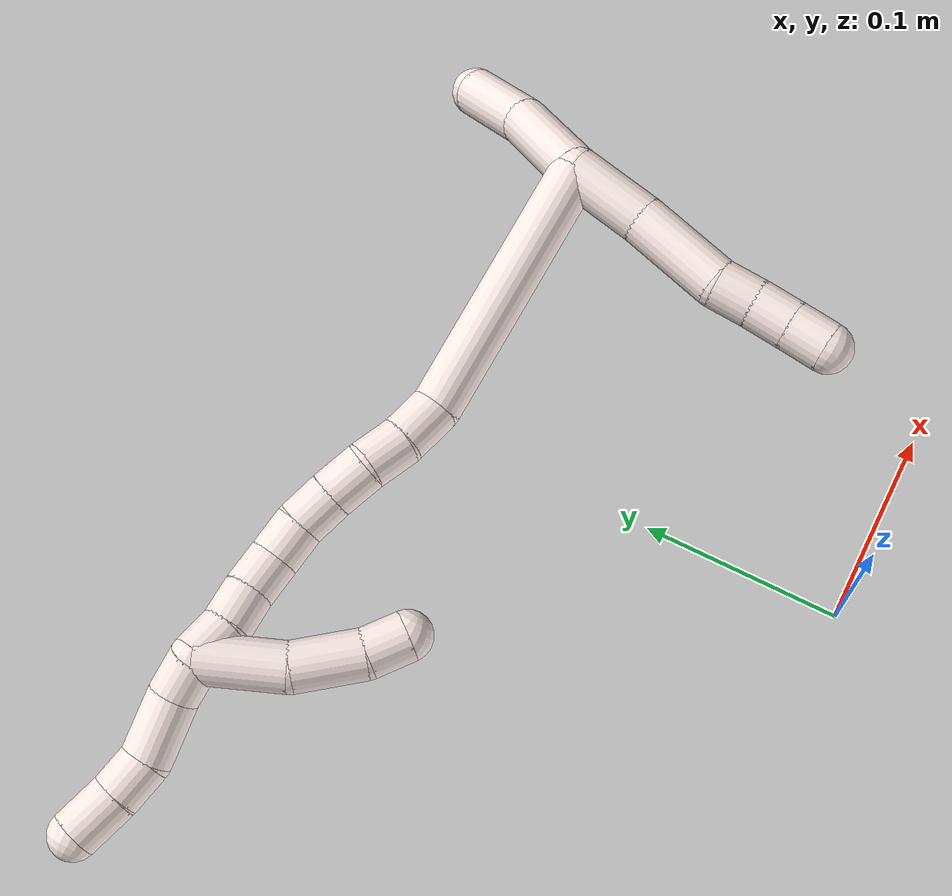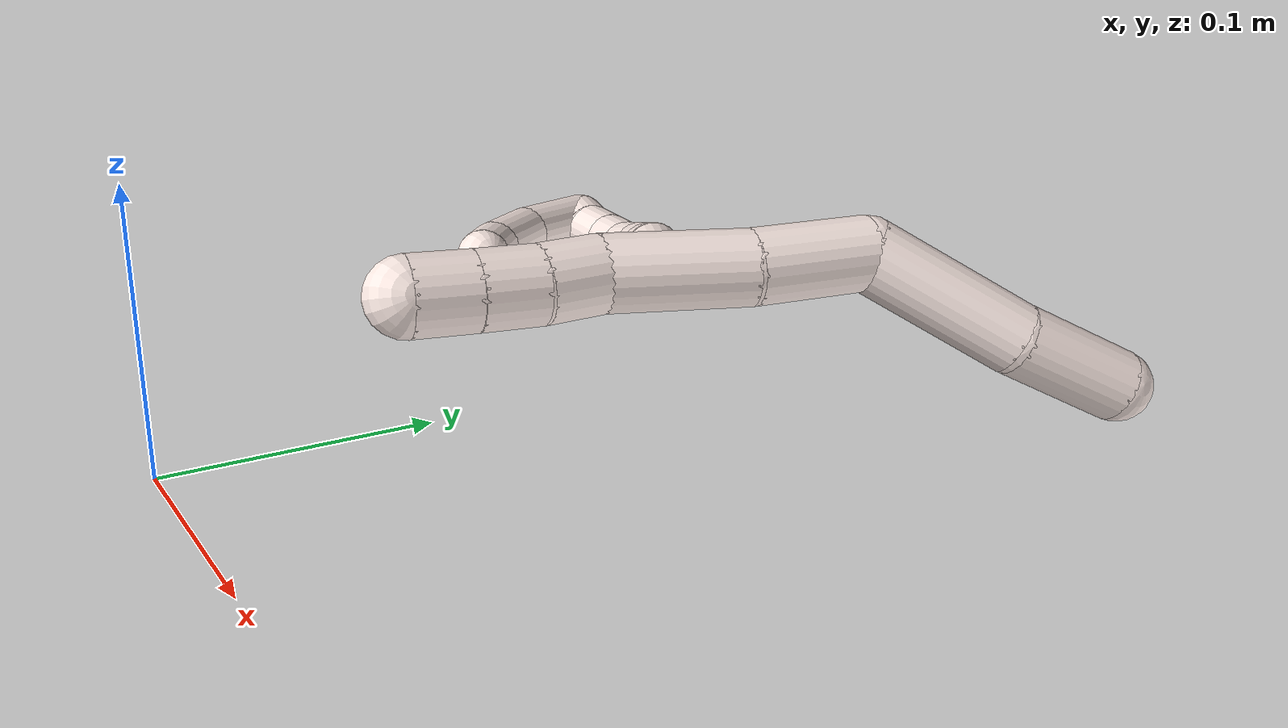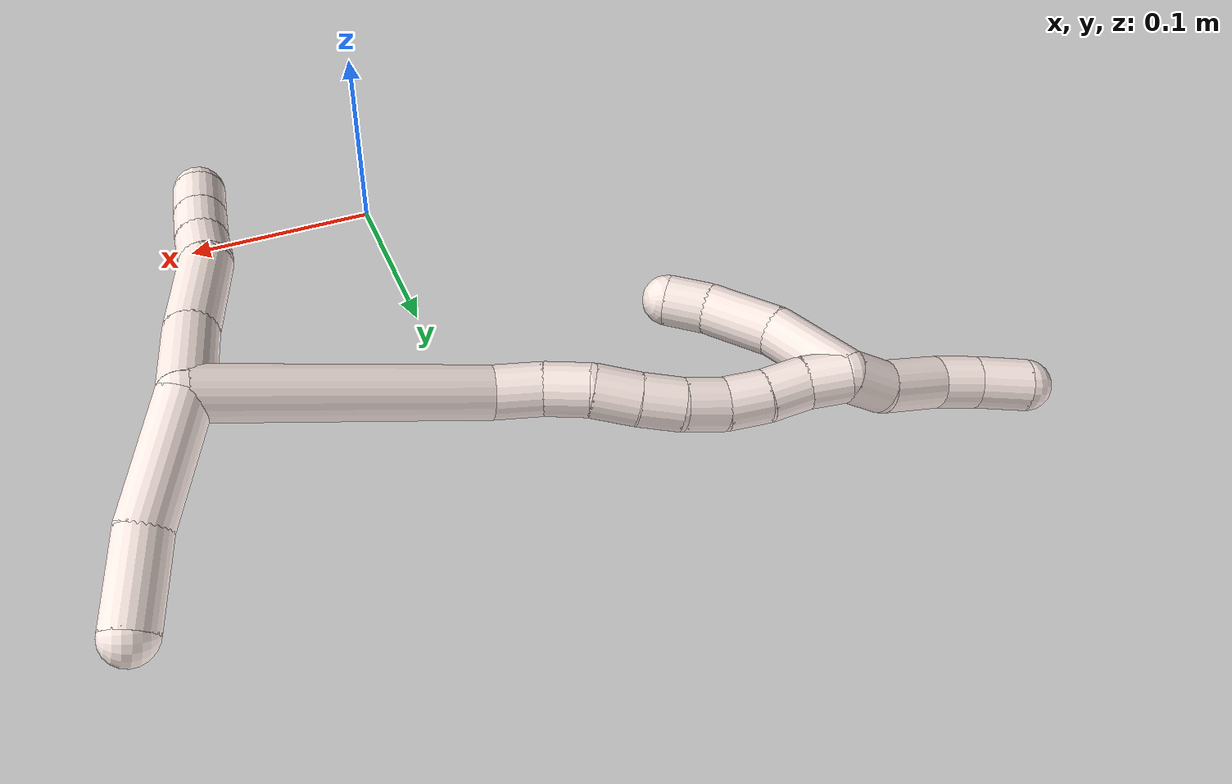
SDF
<sdf version="1.7">
 <world name="default">
  <model name="11">
   <static>0</static>
   <link name="11">
    <collision name="collision-cylinder-e_1_2_8">
     <pose>-0.016785 -0.011431 0.00356 1.26888 -0.951223 -0.724618</pose>
     <geometry><cylinder><radius>0.0125</radius><length>0.041235</length></cylinder></geometry>
     <surface>
      <friction><ode><mu>1.16</mu><mu2>1.16</mu2><slip1>0</slip1><slip2>0</slip2></ode></friction>
      <contact><ode><kp>1e+06</kp><kd>1</kd><max_vel>0</max_vel><min_depth>0.001</min_depth></ode></contact>
     </surface>
    </collision>
    <visual name="visual-cylinder-e_1_2_8">
     <pose>-0.016785 -0.011431 0.00356 1.26888 -0.951223 -0.724618</pose>
     <geometry><cylinder><radius>0.0125</radius><length>0.041235</length></cylinder></geometry>
     <material><ambient>1 0.933333 0.909804 1</ambient></material>
    </visual>
    <collision name="collision-cylinder-e_2_8_9">
     <pose>-0.051824 -0.037554 0.013164 1.18053 -0.85458 -0.59217</pose>
     <geometry><cylinder><radius>0.0125</radius><length>0.048397</length></cylinder></geometry>
     <surface>
      <friction><ode><mu>1.16</mu><mu2>1.16</mu2><slip1>0</slip1><slip2>0</slip2></ode></friction>
      <contact><ode><kp>1e+06</kp><kd>1</kd><max_vel>0</max_vel><min_depth>0.001</min_depth></ode></contact>
     </surface>
    </collision>
    <visual name="visual-cylinder-e_2_8_9">
     <pose>-0.051824 -0.037554 0.013164 1.18053 -0.85458 -0.59217</pose>
     <geometry><cylinder><radius>0.0125</radius><length>0.048397</length></cylinder></geometry>
     <material><ambient>1 0.933333 0.909804 1</ambient></material>
    </visual>
    <collision name="collision-cylinder-e_3_9_10">
     <pose>-0.078709 -0.057467 0.019523 1.51057 -1.02615 -0.97542</pose>
     <geometry><cylinder><radius>0.0125</radius><length>0.020187</length></cylinder></geometry>
     <surface>
      <friction><ode><mu>1.16</mu><mu2>1.16</mu2><slip1>0</slip1><slip2>0</slip2></ode></friction>
      <contact><ode><kp>1e+06</kp><kd>1</kd><max_vel>0</max_vel><min_depth>0.001</min_depth></ode></contact>
     </surface>
    </collision>
    <visual name="visual-cylinder-e_3_9_10">
     <pose>-0.078709 -0.057467 0.019523 1.51057 -1.02615 -0.97542</pose>
     <geometry><cylinder><radius>0.0125</radius><length>0.020187</length></cylinder></geometry>
     <material><ambient>1 0.933333 0.909804 1</ambient></material>
    </visual>
    <collision name="collision-cylinder-e_4_10_11">
     <pose>-0.095456 -0.06849 0.020681 1.42646 -0.944967 -0.832658</pose>
     <geometry><cylinder><radius>0.0125</radius><length>0.020022</length></cylinder></geometry>
     <surface>
      <friction><ode><mu>1.16</mu><mu2>1.16</mu2><slip1>0</slip1><slip2>0</slip2></ode></friction>
      <contact><ode><kp>1e+06</kp><kd>1</kd><max_vel>0</max_vel><min_depth>0.001</min_depth></ode></contact>
     </surface>
    </collision>
    <visual name="visual-cylinder-e_4_10_11">
     <pose>-0.095456 -0.06849 0.020681 1.42646 -0.944967 -0.832658</pose>
     <geometry><cylinder><radius>0.0125</radius><length>0.020022</length></cylinder></geometry>
     <material><ambient>1 0.933333 0.909804 1</ambient></material>
    </visual>
    <collision name="collision-cylinder-e_5_11_6">
     <pose>-0.111642 -0.08025 0.022501 1.40827 -0.928766 -0.804537</pose>
     <geometry><cylinder><radius>0.0125</radius><length>0.020159</length></cylinder></geometry>
     <surface>
      <friction><ode><mu>1.16</mu><mu2>1.16</mu2><slip1>0</slip1><slip2>0</slip2></ode></friction>
      <contact><ode><kp>1e+06</kp><kd>1</kd><max_vel>0</max_vel><min_depth>0.001</min_depth></ode></contact>
     </surface>
    </collision>
    <visual name="visual-cylinder-e_5_11_6">
     <pose>-0.111642 -0.08025 0.022501 1.40827 -0.928766 -0.804537</pose>
     <geometry><cylinder><radius>0.0125</radius><length>0.020159</length></cylinder></geometry>
     <material><ambient>1 0.933333 0.909804 1</ambient></material>
    </visual>
    <collision name="collision-cylinder-e_1_2_12">
     <pose>0.008159 0.026152 -0.009089 -1.90529 0.286586 -0.400353</pose>
     <geometry><cylinder><radius>0.0125</radius><length>0.057728</length></cylinder></geometry>
     <surface>
      <friction><ode><mu>1.16</mu><mu2>1.16</mu2><slip1>0</slip1><slip2>0</slip2></ode></friction>
      <contact><ode><kp>1e+06</kp><kd>1</kd><max_vel>0</max_vel><min_depth>0.001</min_depth></ode></contact>
     </surface>
    </collision>
    <visual name="visual-cylinder-e_1_2_12">
     <pose>0.008159 0.026152 -0.009089 -1.90529 0.286586 -0.400353</pose>
     <geometry><cylinder><radius>0.0125</radius><length>0.057728</length></cylinder></geometry>
     <material><ambient>1 0.933333 0.909804 1</ambient></material>
    </visual>
    <collision name="collision-cylinder-e_2_12_5">
     <pose>0.02538 0.071041 -0.021859 -1.76474 0.443092 -0.534478</pose>
     <geometry><cylinder><radius>0.0125</radius><length>0.042272</length></cylinder></geometry>
     <surface>
      <friction><ode><mu>1.16</mu><mu2>1.16</mu2><slip1>0</slip1><slip2>0</slip2></ode></friction>
      <contact><ode><kp>1e+06</kp><kd>1</kd><max_vel>0</max_vel><min_depth>0.001</min_depth></ode></contact>
     </surface>
    </collision>
    <visual name="visual-cylinder-e_2_12_5">
     <pose>0.02538 0.071041 -0.021859 -1.76474 0.443092 -0.534478</pose>
     <geometry><cylinder><radius>0.0125</radius><length>0.042272</length></cylinder></geometry>
     <material><ambient>1 0.933333 0.909804 1</ambient></material>
    </visual>
    <collision name="collision-cylinder-e_1_2_13">
     <pose>0.00215 0.00108 0.066613 -0.016216 0.032255 -0.000262</pose>
     <geometry><cylinder><radius>0.0125</radius><length>0.133314</length></cylinder></geometry>
     <surface>
      <friction><ode><mu>1.16</mu><mu2>1.16</mu2><slip1>0</slip1><slip2>0</slip2></ode></friction>
      <contact><ode><kp>1e+06</kp><kd>1</kd><max_vel>0</max_vel><min_depth>0.001</min_depth></ode></contact>
     </surface>
    </collision>
    <visual name="visual-cylinder-e_1_2_13">
     <pose>0.00215 0.00108 0.066613 -0.016216 0.032255 -0.000262</pose>
     <geometry><cylinder><radius>0.0125</radius><length>0.133314</length></cylinder></geometry>
     <material><ambient>1 0.933333 0.909804 1</ambient></material>
    </visual>
    <collision name="collision-cylinder-e_2_13_14">
     <pose>0.008266 0.001145 0.144143 0.092808 0.347136 0.016284</pose>
     <geometry><cylinder><radius>0.0125</radius><length>0.023319</length></cylinder></geometry>
     <surface>
      <friction><ode><mu>1.16</mu><mu2>1.16</mu2><slip1>0</slip1><slip2>0</slip2></ode></friction>
      <contact><ode><kp>1e+06</kp><kd>1</kd><max_vel>0</max_vel><min_depth>0.001</min_depth></ode></contact>
     </surface>
    </collision>
    <visual name="visual-cylinder-e_2_13_14">
     <pose>0.008266 0.001145 0.144143 0.092808 0.347136 0.016284</pose>
     <geometry><cylinder><radius>0.0125</radius><length>0.023319</length></cylinder></geometry>
     <material><ambient>1 0.933333 0.909804 1</ambient></material>
    </visual>
    <collision name="collision-cylinder-e_3_14_15">
     <pose>0.017217 0.000115 0.164537 0.001394 0.484203 0.000344</pose>
     <geometry><cylinder><radius>0.0125</radius><length>0.021415</length></cylinder></geometry>
     <surface>
      <friction><ode><mu>1.16</mu><mu2>1.16</mu2><slip1>0</slip1><slip2>0</slip2></ode></friction>
      <contact><ode><kp>1e+06</kp><kd>1</kd><max_vel>0</max_vel><min_depth>0.001</min_depth></ode></contact>
     </surface>
    </collision>
    <visual name="visual-cylinder-e_3_14_15">
     <pose>0.017217 0.000115 0.164537 0.001394 0.484203 0.000344</pose>
     <geometry><cylinder><radius>0.0125</radius><length>0.021415</length></cylinder></geometry>
     <material><ambient>1 0.933333 0.909804 1</ambient></material>
    </visual>
    <collision name="collision-cylinder-e_4_15_16">
     <pose>0.025777 0.002012 0.184101 -0.187095 0.335185 -0.031743</pose>
     <geometry><cylinder><radius>0.0125</radius><length>0.021743</length></cylinder></geometry>
     <surface>
      <friction><ode><mu>1.16</mu><mu2>1.16</mu2><slip1>0</slip1><slip2>0</slip2></ode></friction>
      <contact><ode><kp>1e+06</kp><kd>1</kd><max_vel>0</max_vel><min_depth>0.001</min_depth></ode></contact>
     </surface>
    </collision>
    <visual name="visual-cylinder-e_4_15_16">
     <pose>0.025777 0.002012 0.184101 -0.187095 0.335185 -0.031743</pose>
     <geometry><cylinder><radius>0.0125</radius><length>0.021743</length></cylinder></geometry>
     <material><ambient>1 0.933333 0.909804 1</ambient></material>
    </visual>
    <collision name="collision-cylinder-e_5_16_17">
     <pose>0.032328 0.005021 0.203723 -0.114855 0.300508 -0.017407</pose>
     <geometry><cylinder><radius>0.0125</radius><length>0.020097</length></cylinder></geometry>
     <surface>
      <friction><ode><mu>1.16</mu><mu2>1.16</mu2><slip1>0</slip1><slip2>0</slip2></ode></friction>
      <contact><ode><kp>1e+06</kp><kd>1</kd><max_vel>0</max_vel><min_depth>0.001</min_depth></ode></contact>
     </surface>
    </collision>
    <visual name="visual-cylinder-e_5_16_17">
     <pose>0.032328 0.005021 0.203723 -0.114855 0.300508 -0.017407</pose>
     <geometry><cylinder><radius>0.0125</radius><length>0.020097</length></cylinder></geometry>
     <material><ambient>1 0.933333 0.909804 1</ambient></material>
    </visual>
    <collision name="collision-cylinder-e_6_17_18">
     <pose>0.036943 0.006103 0.223144 0.001826 0.164503 0.000151</pose>
     <geometry><cylinder><radius>0.0125</radius><length>0.020043</length></cylinder></geometry>
     <surface>
      <friction><ode><mu>1.16</mu><mu2>1.16</mu2><slip1>0</slip1><slip2>0</slip2></ode></friction>
      <contact><ode><kp>1e+06</kp><kd>1</kd><max_vel>0</max_vel><min_depth>0.001</min_depth></ode></contact>
     </surface>
    </collision>
    <visual name="visual-cylinder-e_6_17_18">
     <pose>0.036943 0.006103 0.223144 0.001826 0.164503 0.000151</pose>
     <geometry><cylinder><radius>0.0125</radius><length>0.020043</length></cylinder></geometry>
     <material><ambient>1 0.933333 0.909804 1</ambient></material>
    </visual>
    <collision name="collision-cylinder-e_7_18_19">
     <pose>0.040838 0.004159 0.242605 0.198473 0.226724 0.02267</pose>
     <geometry><cylinder><radius>0.0125</radius><length>0.020046</length></cylinder></geometry>
     <surface>
      <friction><ode><mu>1.16</mu><mu2>1.16</mu2><slip1>0</slip1><slip2>0</slip2></ode></friction>
      <contact><ode><kp>1e+06</kp><kd>1</kd><max_vel>0</max_vel><min_depth>0.001</min_depth></ode></contact>
     </surface>
    </collision>
    <visual name="visual-cylinder-e_7_18_19">
     <pose>0.040838 0.004159 0.242605 0.198473 0.226724 0.02267</pose>
     <geometry><cylinder><radius>0.0125</radius><length>0.020046</length></cylinder></geometry>
     <material><ambient>1 0.933333 0.909804 1</ambient></material>
    </visual>
    <collision name="collision-cylinder-e_8_19_20">
     <pose>0.044797 -0.000783 0.261571 0.310795 0.171325 0.026904</pose>
     <geometry><cylinder><radius>0.0125</radius><length>0.02002</length></cylinder></geometry>
     <surface>
      <friction><ode><mu>1.16</mu><mu2>1.16</mu2><slip1>0</slip1><slip2>0</slip2></ode></friction>
      <contact><ode><kp>1e+06</kp><kd>1</kd><max_vel>0</max_vel><min_depth>0.001</min_depth></ode></contact>
     </surface>
    </collision>
    <visual name="visual-cylinder-e_8_19_20">
     <pose>0.044797 -0.000783 0.261571 0.310795 0.171325 0.026904</pose>
     <geometry><cylinder><radius>0.0125</radius><length>0.02002</length></cylinder></geometry>
     <material><ambient>1 0.933333 0.909804 1</ambient></material>
    </visual>
    <collision name="collision-cylinder-e_9_20_1">
     <pose>0.050043 -0.005714 0.280118 0.20619 0.361688 0.03783</pose>
     <geometry><cylinder><radius>0.0125</radius><length>0.020003</length></cylinder></geometry>
     <surface>
      <friction><ode><mu>1.16</mu><mu2>1.16</mu2><slip1>0</slip1><slip2>0</slip2></ode></friction>
      <contact><ode><kp>1e+06</kp><kd>1</kd><max_vel>0</max_vel><min_depth>0.001</min_depth></ode></contact>
     </surface>
    </collision>
    <visual name="visual-cylinder-e_9_20_1">
     <pose>0.050043 -0.005714 0.280118 0.20619 0.361688 0.03783</pose>
     <geometry><cylinder><radius>0.0125</radius><length>0.020003</length></cylinder></geometry>
     <material><ambient>1 0.933333 0.909804 1</ambient></material>
    </visual>
    <collision name="collision-cylinder-e_1_1_21">
     <pose>0.035537 -0.016612 0.280878 2.32255 -0.972661 -1.76673</pose>
     <geometry><cylinder><radius>0.0125</radius><length>0.043673</length></cylinder></geometry>
     <surface>
      <friction><ode><mu>1.16</mu><mu2>1.16</mu2><slip1>0</slip1><slip2>0</slip2></ode></friction>
      <contact><ode><kp>1e+06</kp><kd>1</kd><max_vel>0</max_vel><min_depth>0.001</min_depth></ode></contact>
     </surface>
    </collision>
    <visual name="visual-cylinder-e_1_1_21">
     <pose>0.035537 -0.016612 0.280878 2.32255 -0.972661 -1.76673</pose>
     <geometry><cylinder><radius>0.0125</radius><length>0.043673</length></cylinder></geometry>
     <material><ambient>1 0.933333 0.909804 1</ambient></material>
    </visual>
    <collision name="collision-cylinder-e_2_21_22">
     <pose>0.004375 -0.030318 0.261559 2.73338 -0.834018 -2.26737</pose>
     <geometry><cylinder><radius>0.0125</radius><length>0.035419</length></cylinder></geometry>
     <surface>
      <friction><ode><mu>1.16</mu><mu2>1.16</mu2><slip1>0</slip1><slip2>0</slip2></ode></friction>
      <contact><ode><kp>1e+06</kp><kd>1</kd><max_vel>0</max_vel><min_depth>0.001</min_depth></ode></contact>
     </surface>
    </collision>
    <visual name="visual-cylinder-e_2_21_22">
     <pose>0.004375 -0.030318 0.261559 2.73338 -0.834018 -2.26737</pose>
     <geometry><cylinder><radius>0.0125</radius><length>0.035419</length></cylinder></geometry>
     <material><ambient>1 0.933333 0.909804 1</ambient></material>
    </visual>
    <collision name="collision-cylinder-e_3_22_4">
     <pose>-0.015076 -0.036791 0.242507 2.92958 -0.650932 -2.53071</pose>
     <geometry><cylinder><radius>0.0125</radius><length>0.020908</length></cylinder></geometry>
     <surface>
      <friction><ode><mu>1.16</mu><mu2>1.16</mu2><slip1>0</slip1><slip2>0</slip2></ode></friction>
      <contact><ode><kp>1e+06</kp><kd>1</kd><max_vel>0</max_vel><min_depth>0.001</min_depth></ode></contact>
     </surface>
    </collision>
    <visual name="visual-cylinder-e_3_22_4">
     <pose>-0.015076 -0.036791 0.242507 2.92958 -0.650932 -2.53071</pose>
     <geometry><cylinder><radius>0.0125</radius><length>0.020908</length></cylinder></geometry>
     <material><ambient>1 0.933333 0.909804 1</ambient></material>
    </visual>
    <collision name="collision-cylinder-e_1_1_23">
     <pose>0.052922 -0.004733 0.29952 -0.275505 -0.061947 0.00859</pose>
     <geometry><cylinder><radius>0.0125</radius><length>0.021335</length></cylinder></geometry>
     <surface>
      <friction><ode><mu>1.16</mu><mu2>1.16</mu2><slip1>0</slip1><slip2>0</slip2></ode></friction>
      <contact><ode><kp>1e+06</kp><kd>1</kd><max_vel>0</max_vel><min_depth>0.001</min_depth></ode></contact>
     </surface>
    </collision>
    <visual name="visual-cylinder-e_1_1_23">
     <pose>0.052922 -0.004733 0.29952 -0.275505 -0.061947 0.00859</pose>
     <geometry><cylinder><radius>0.0125</radius><length>0.021335</length></cylinder></geometry>
     <material><ambient>1 0.933333 0.909804 1</ambient></material>
    </visual>
    <collision name="collision-cylinder-e_2_23_24">
     <pose>0.050934 -0.002481 0.325986 0.039679 -0.081572 -0.001619</pose>
     <geometry><cylinder><radius>0.0125</radius><length>0.032574</length></cylinder></geometry>
     <surface>
      <friction><ode><mu>1.16</mu><mu2>1.16</mu2><slip1>0</slip1><slip2>0</slip2></ode></friction>
      <contact><ode><kp>1e+06</kp><kd>1</kd><max_vel>0</max_vel><min_depth>0.001</min_depth></ode></contact>
     </surface>
    </collision>
    <visual name="visual-cylinder-e_2_23_24">
     <pose>0.050934 -0.002481 0.325986 0.039679 -0.081572 -0.001619</pose>
     <geometry><cylinder><radius>0.0125</radius><length>0.032574</length></cylinder></geometry>
     <material><ambient>1 0.933333 0.909804 1</ambient></material>
    </visual>
    <collision name="collision-cylinder-e_3_24_25">
     <pose>0.052004 -0.003161 0.352295 0.003616 0.233184 0.000424</pose>
     <geometry><cylinder><radius>0.0125</radius><length>0.02074</length></cylinder></geometry>
     <surface>
      <friction><ode><mu>1.16</mu><mu2>1.16</mu2><slip1>0</slip1><slip2>0</slip2></ode></friction>
      <contact><ode><kp>1e+06</kp><kd>1</kd><max_vel>0</max_vel><min_depth>0.001</min_depth></ode></contact>
     </surface>
    </collision>
    <visual name="visual-cylinder-e_3_24_25">
     <pose>0.052004 -0.003161 0.352295 0.003616 0.233184 0.000424</pose>
     <geometry><cylinder><radius>0.0125</radius><length>0.02074</length></cylinder></geometry>
     <material><ambient>1 0.933333 0.909804 1</ambient></material>
    </visual>
    <collision name="collision-cylinder-e_4_25_3">
     <pose>0.058454 -0.002697 0.374384 -0.041675 0.325563 -0.006846</pose>
     <geometry><cylinder><radius>0.0125</radius><length>0.025351</length></cylinder></geometry>
     <surface>
      <friction><ode><mu>1.16</mu><mu2>1.16</mu2><slip1>0</slip1><slip2>0</slip2></ode></friction>
      <contact><ode><kp>1e+06</kp><kd>1</kd><max_vel>0</max_vel><min_depth>0.001</min_depth></ode></contact>
     </surface>
    </collision>
    <visual name="visual-cylinder-e_4_25_3">
     <pose>0.058454 -0.002697 0.374384 -0.041675 0.325563 -0.006846</pose>
     <geometry><cylinder><radius>0.0125</radius><length>0.025351</length></cylinder></geometry>
     <material><ambient>1 0.933333 0.909804 1</ambient></material>
    </visual>
    <collision name="collision-sphere-3">
     <pose>0.062508 -0.002197 0.386383 0 -0 0</pose>
     <geometry><sphere><radius>0.0125</radius></sphere></geometry>
     <surface>
      <friction><ode><mu>1.16</mu><mu2>1.16</mu2><slip1>0</slip1><slip2>0</slip2></ode></friction>
      <contact><ode><kp>1e+06</kp><kd>1</kd><max_vel>0</max_vel><min_depth>0.001</min_depth></ode></contact>
     </surface>
    </collision>
    <visual name="visual-sphere-3">
     <pose>0.062508 -0.002197 0.386383 0 -0 0</pose>
     <geometry><sphere><radius>0.0125</radius></sphere></geometry>
     <material><ambient>1 0.933333 0.909804 1</ambient></material>
    </visual>
    <collision name="collision-sphere-25">
     <pose>0.0544 -0.003198 0.362385 0 -0 0</pose>
     <geometry><sphere><radius>0.0125</radius></sphere></geometry>
     <surface>
      <friction><ode><mu>1.16</mu><mu2>1.16</mu2><slip1>0</slip1><slip2>0</slip2></ode></friction>
      <contact><ode><kp>1e+06</kp><kd>1</kd><max_vel>0</max_vel><min_depth>0.001</min_depth></ode></contact>
     </surface>
    </collision>
    <visual name="visual-sphere-25">
     <pose>0.0544 -0.003198 0.362385 0 -0 0</pose>
     <geometry><sphere><radius>0.0125</radius></sphere></geometry>
     <material><ambient>1 0.933333 0.909804 1</ambient></material>
    </visual>
    <collision name="collision-sphere-24">
     <pose>0.049607 -0.003125 0.342206 0 -0 0</pose>
     <geometry><sphere><radius>0.0125</radius></sphere></geometry>
     <surface>
      <friction><ode><mu>1.16</mu><mu2>1.16</mu2><slip1>0</slip1><slip2>0</slip2></ode></friction>
      <contact><ode><kp>1e+06</kp><kd>1</kd><max_vel>0</max_vel><min_depth>0.001</min_depth></ode></contact>
     </surface>
    </collision>
    <visual name="visual-sphere-24">
     <pose>0.049607 -0.003125 0.342206 0 -0 0</pose>
     <geometry><sphere><radius>0.0125</radius></sphere></geometry>
     <material><ambient>1 0.933333 0.909804 1</ambient></material>
    </visual>
    <collision name="collision-sphere-23">
     <pose>0.052261 -0.001837 0.309766 0 -0 0</pose>
     <geometry><sphere><radius>0.0125</radius></sphere></geometry>
     <surface>
      <friction><ode><mu>1.16</mu><mu2>1.16</mu2><slip1>0</slip1><slip2>0</slip2></ode></friction>
      <contact><ode><kp>1e+06</kp><kd>1</kd><max_vel>0</max_vel><min_depth>0.001</min_depth></ode></contact>
     </surface>
    </collision>
    <visual name="visual-sphere-23">
     <pose>0.052261 -0.001837 0.309766 0 -0 0</pose>
     <geometry><sphere><radius>0.0125</radius></sphere></geometry>
     <material><ambient>1 0.933333 0.909804 1</ambient></material>
    </visual>
    <collision name="collision-sphere-4">
     <pose>-0.02141 -0.038541 0.234377 0 -0 0</pose>
     <geometry><sphere><radius>0.0125</radius></sphere></geometry>
     <surface>
      <friction><ode><mu>1.16</mu><mu2>1.16</mu2><slip1>0</slip1><slip2>0</slip2></ode></friction>
      <contact><ode><kp>1e+06</kp><kd>1</kd><max_vel>0</max_vel><min_depth>0.001</min_depth></ode></contact>
     </surface>
    </collision>
    <visual name="visual-sphere-4">
     <pose>-0.02141 -0.038541 0.234377 0 -0 0</pose>
     <geometry><sphere><radius>0.0125</radius></sphere></geometry>
     <material><ambient>1 0.933333 0.909804 1</ambient></material>
    </visual>
    <collision name="collision-sphere-22">
     <pose>-0.008741 -0.035041 0.250637 0 -0 0</pose>
     <geometry><sphere><radius>0.0125</radius></sphere></geometry>
     <surface>
      <friction><ode><mu>1.16</mu><mu2>1.16</mu2><slip1>0</slip1><slip2>0</slip2></ode></friction>
      <contact><ode><kp>1e+06</kp><kd>1</kd><max_vel>0</max_vel><min_depth>0.001</min_depth></ode></contact>
     </surface>
    </collision>
    <visual name="visual-sphere-22">
     <pose>-0.008741 -0.035041 0.250637 0 -0 0</pose>
     <geometry><sphere><radius>0.0125</radius></sphere></geometry>
     <material><ambient>1 0.933333 0.909804 1</ambient></material>
    </visual>
    <collision name="collision-sphere-21">
     <pose>0.017491 -0.025594 0.27248 0 -0 0</pose>
     <geometry><sphere><radius>0.0125</radius></sphere></geometry>
     <surface>
      <friction><ode><mu>1.16</mu><mu2>1.16</mu2><slip1>0</slip1><slip2>0</slip2></ode></friction>
      <contact><ode><kp>1e+06</kp><kd>1</kd><max_vel>0</max_vel><min_depth>0.001</min_depth></ode></contact>
     </surface>
    </collision>
    <visual name="visual-sphere-21">
     <pose>0.017491 -0.025594 0.27248 0 -0 0</pose>
     <geometry><sphere><radius>0.0125</radius></sphere></geometry>
     <material><ambient>1 0.933333 0.909804 1</ambient></material>
    </visual>
    <collision name="collision-sphere-1">
     <pose>0.053582 -0.00763 0.289275 0 -0 0</pose>
     <geometry><sphere><radius>0.0125</radius></sphere></geometry>
     <surface>
      <friction><ode><mu>1.16</mu><mu2>1.16</mu2><slip1>0</slip1><slip2>0</slip2></ode></friction>
      <contact><ode><kp>1e+06</kp><kd>1</kd><max_vel>0</max_vel><min_depth>0.001</min_depth></ode></contact>
     </surface>
    </collision>
    <visual name="visual-sphere-1">
     <pose>0.053582 -0.00763 0.289275 0 -0 0</pose>
     <geometry><sphere><radius>0.0125</radius></sphere></geometry>
     <material><ambient>1 0.933333 0.909804 1</ambient></material>
    </visual>
    <collision name="collision-sphere-6">
     <pose>-0.119715 -0.086206 0.023478 0 -0 0</pose>
     <geometry><sphere><radius>0.0125</radius></sphere></geometry>
     <surface>
      <friction><ode><mu>1.16</mu><mu2>1.16</mu2><slip1>0</slip1><slip2>0</slip2></ode></friction>
      <contact><ode><kp>1e+06</kp><kd>1</kd><max_vel>0</max_vel><min_depth>0.001</min_depth></ode></contact>
     </surface>
    </collision>
    <visual name="visual-sphere-6">
     <pose>-0.119715 -0.086206 0.023478 0 -0 0</pose>
     <geometry><sphere><radius>0.0125</radius></sphere></geometry>
     <material><ambient>1 0.933333 0.909804 1</ambient></material>
    </visual>
    <collision name="collision-sphere-11">
     <pose>-0.10357 -0.074293 0.021525 0 -0 0</pose>
     <geometry><sphere><radius>0.0125</radius></sphere></geometry>
     <surface>
      <friction><ode><mu>1.16</mu><mu2>1.16</mu2><slip1>0</slip1><slip2>0</slip2></ode></friction>
      <contact><ode><kp>1e+06</kp><kd>1</kd><max_vel>0</max_vel><min_depth>0.001</min_depth></ode></contact>
     </surface>
    </collision>
    <visual name="visual-sphere-11">
     <pose>-0.10357 -0.074293 0.021525 0 -0 0</pose>
     <geometry><sphere><radius>0.0125</radius></sphere></geometry>
     <material><ambient>1 0.933333 0.909804 1</ambient></material>
    </visual>
    <collision name="collision-sphere-10">
     <pose>-0.087342 -0.062687 0.019838 0 -0 0</pose>
     <geometry><sphere><radius>0.0125</radius></sphere></geometry>
     <surface>
      <friction><ode><mu>1.16</mu><mu2>1.16</mu2><slip1>0</slip1><slip2>0</slip2></ode></friction>
      <contact><ode><kp>1e+06</kp><kd>1</kd><max_vel>0</max_vel><min_depth>0.001</min_depth></ode></contact>
     </surface>
    </collision>
    <visual name="visual-sphere-10">
     <pose>-0.087342 -0.062687 0.019838 0 -0 0</pose>
     <geometry><sphere><radius>0.0125</radius></sphere></geometry>
     <material><ambient>1 0.933333 0.909804 1</ambient></material>
    </visual>
    <collision name="collision-sphere-9">
     <pose>-0.070076 -0.052247 0.019208 0 -0 0</pose>
     <geometry><sphere><radius>0.0125</radius></sphere></geometry>
     <surface>
      <friction><ode><mu>1.16</mu><mu2>1.16</mu2><slip1>0</slip1><slip2>0</slip2></ode></friction>
      <contact><ode><kp>1e+06</kp><kd>1</kd><max_vel>0</max_vel><min_depth>0.001</min_depth></ode></contact>
     </surface>
    </collision>
    <visual name="visual-sphere-9">
     <pose>-0.070076 -0.052247 0.019208 0 -0 0</pose>
     <geometry><sphere><radius>0.0125</radius></sphere></geometry>
     <material><ambient>1 0.933333 0.909804 1</ambient></material>
    </visual>
    <collision name="collision-sphere-2">
     <geometry><sphere><radius>0.0125</radius></sphere></geometry>
     <surface>
      <friction><ode><mu>1.16</mu><mu2>1.16</mu2><slip1>0</slip1><slip2>0</slip2></ode></friction>
      <contact><ode><kp>1e+06</kp><kd>1</kd><max_vel>0</max_vel><min_depth>0.001</min_depth></ode></contact>
     </surface>
    </collision>
    <visual name="visual-sphere-2">
     <geometry><sphere><radius>0.0125</radius></sphere></geometry>
     <material><ambient>1 0.933333 0.909804 1</ambient></material>
    </visual>
    <collision name="collision-sphere-19">
     <pose>0.043091 0.002234 0.25218 0 -0 0</pose>
     <geometry><sphere><radius>0.0125</radius></sphere></geometry>
     <surface>
      <friction><ode><mu>1.16</mu><mu2>1.16</mu2><slip1>0</slip1><slip2>0</slip2></ode></friction>
      <contact><ode><kp>1e+06</kp><kd>1</kd><max_vel>0</max_vel><min_depth>0.001</min_depth></ode></contact>
     </surface>
    </collision>
    <visual name="visual-sphere-19">
     <pose>0.043091 0.002234 0.25218 0 -0 0</pose>
     <geometry><sphere><radius>0.0125</radius></sphere></geometry>
     <material><ambient>1 0.933333 0.909804 1</ambient></material>
    </visual>
    <collision name="collision-sphere-8">
     <pose>-0.033571 -0.022862 0.00712 0 -0 0</pose>
     <geometry><sphere><radius>0.0125</radius></sphere></geometry>
     <surface>
      <friction><ode><mu>1.16</mu><mu2>1.16</mu2><slip1>0</slip1><slip2>0</slip2></ode></friction>
      <contact><ode><kp>1e+06</kp><kd>1</kd><max_vel>0</max_vel><min_depth>0.001</min_depth></ode></contact>
     </surface>
    </collision>
    <visual name="visual-sphere-8">
     <pose>-0.033571 -0.022862 0.00712 0 -0 0</pose>
     <geometry><sphere><radius>0.0125</radius></sphere></geometry>
     <material><ambient>1 0.933333 0.909804 1</ambient></material>
    </visual>
    <collision name="collision-sphere-12">
     <pose>0.016319 0.052305 -0.018179 0 -0 0</pose>
     <geometry><sphere><radius>0.0125</radius></sphere></geometry>
     <surface>
      <friction><ode><mu>1.16</mu><mu2>1.16</mu2><slip1>0</slip1><slip2>0</slip2></ode></friction>
      <contact><ode><kp>1e+06</kp><kd>1</kd><max_vel>0</max_vel><min_depth>0.001</min_depth></ode></contact>
     </surface>
    </collision>
    <visual name="visual-sphere-12">
     <pose>0.016319 0.052305 -0.018179 0 -0 0</pose>
     <geometry><sphere><radius>0.0125</radius></sphere></geometry>
     <material><ambient>1 0.933333 0.909804 1</ambient></material>
    </visual>
    <collision name="collision-sphere-5">
     <pose>0.034442 0.089778 -0.025539 0 -0 0</pose>
     <geometry><sphere><radius>0.0125</radius></sphere></geometry>
     <surface>
      <friction><ode><mu>1.16</mu><mu2>1.16</mu2><slip1>0</slip1><slip2>0</slip2></ode></friction>
      <contact><ode><kp>1e+06</kp><kd>1</kd><max_vel>0</max_vel><min_depth>0.001</min_depth></ode></contact>
     </surface>
    </collision>
    <visual name="visual-sphere-5">
     <pose>0.034442 0.089778 -0.025539 0 -0 0</pose>
     <geometry><sphere><radius>0.0125</radius></sphere></geometry>
     <material><ambient>1 0.933333 0.909804 1</ambient></material>
    </visual>
    <collision name="collision-sphere-13">
     <pose>0.004299 0.002161 0.133227 0 -0 0</pose>
     <geometry><sphere><radius>0.0125</radius></sphere></geometry>
     <surface>
      <friction><ode><mu>1.16</mu><mu2>1.16</mu2><slip1>0</slip1><slip2>0</slip2></ode></friction>
      <contact><ode><kp>1e+06</kp><kd>1</kd><max_vel>0</max_vel><min_depth>0.001</min_depth></ode></contact>
     </surface>
    </collision>
    <visual name="visual-sphere-13">
     <pose>0.004299 0.002161 0.133227 0 -0 0</pose>
     <geometry><sphere><radius>0.0125</radius></sphere></geometry>
     <material><ambient>1 0.933333 0.909804 1</ambient></material>
    </visual>
    <collision name="collision-sphere-14">
     <pose>0.012232 0.000128 0.15506 0 -0 0</pose>
     <geometry><sphere><radius>0.0125</radius></sphere></geometry>
     <surface>
      <friction><ode><mu>1.16</mu><mu2>1.16</mu2><slip1>0</slip1><slip2>0</slip2></ode></friction>
      <contact><ode><kp>1e+06</kp><kd>1</kd><max_vel>0</max_vel><min_depth>0.001</min_depth></ode></contact>
     </surface>
    </collision>
    <visual name="visual-sphere-14">
     <pose>0.012232 0.000128 0.15506 0 -0 0</pose>
     <geometry><sphere><radius>0.0125</radius></sphere></geometry>
     <material><ambient>1 0.933333 0.909804 1</ambient></material>
    </visual>
    <collision name="collision-sphere-15">
     <pose>0.022201 0.000102 0.174014 0 -0 0</pose>
     <geometry><sphere><radius>0.0125</radius></sphere></geometry>
     <surface>
      <friction><ode><mu>1.16</mu><mu2>1.16</mu2><slip1>0</slip1><slip2>0</slip2></ode></friction>
      <contact><ode><kp>1e+06</kp><kd>1</kd><max_vel>0</max_vel><min_depth>0.001</min_depth></ode></contact>
     </surface>
    </collision>
    <visual name="visual-sphere-15">
     <pose>0.022201 0.000102 0.174014 0 -0 0</pose>
     <geometry><sphere><radius>0.0125</radius></sphere></geometry>
     <material><ambient>1 0.933333 0.909804 1</ambient></material>
    </visual>
    <collision name="collision-sphere-16">
     <pose>0.029354 0.003921 0.194188 0 -0 0</pose>
     <geometry><sphere><radius>0.0125</radius></sphere></geometry>
     <surface>
      <friction><ode><mu>1.16</mu><mu2>1.16</mu2><slip1>0</slip1><slip2>0</slip2></ode></friction>
      <contact><ode><kp>1e+06</kp><kd>1</kd><max_vel>0</max_vel><min_depth>0.001</min_depth></ode></contact>
     </surface>
    </collision>
    <visual name="visual-sphere-16">
     <pose>0.029354 0.003921 0.194188 0 -0 0</pose>
     <geometry><sphere><radius>0.0125</radius></sphere></geometry>
     <material><ambient>1 0.933333 0.909804 1</ambient></material>
    </visual>
    <collision name="collision-sphere-17">
     <pose>0.035302 0.006121 0.213258 0 -0 0</pose>
     <geometry><sphere><radius>0.0125</radius></sphere></geometry>
     <surface>
      <friction><ode><mu>1.16</mu><mu2>1.16</mu2><slip1>0</slip1><slip2>0</slip2></ode></friction>
      <contact><ode><kp>1e+06</kp><kd>1</kd><max_vel>0</max_vel><min_depth>0.001</min_depth></ode></contact>
     </surface>
    </collision>
    <visual name="visual-sphere-17">
     <pose>0.035302 0.006121 0.213258 0 -0 0</pose>
     <geometry><sphere><radius>0.0125</radius></sphere></geometry>
     <material><ambient>1 0.933333 0.909804 1</ambient></material>
    </visual>
    <collision name="collision-sphere-18">
     <pose>0.038585 0.006085 0.23303 0 -0 0</pose>
     <geometry><sphere><radius>0.0125</radius></sphere></geometry>
     <surface>
      <friction><ode><mu>1.16</mu><mu2>1.16</mu2><slip1>0</slip1><slip2>0</slip2></ode></friction>
      <contact><ode><kp>1e+06</kp><kd>1</kd><max_vel>0</max_vel><min_depth>0.001</min_depth></ode></contact>
     </surface>
    </collision>
    <visual name="visual-sphere-18">
     <pose>0.038585 0.006085 0.23303 0 -0 0</pose>
     <geometry><sphere><radius>0.0125</radius></sphere></geometry>
     <material><ambient>1 0.933333 0.909804 1</ambient></material>
    </visual>
    <collision name="collision-sphere-20">
     <pose>0.046504 -0.003799 0.270962 0 -0 0</pose>
     <geometry><sphere><radius>0.0125</radius></sphere></geometry>
     <surface>
      <friction><ode><mu>1.16</mu><mu2>1.16</mu2><slip1>0</slip1><slip2>0</slip2></ode></friction>
      <contact><ode><kp>1e+06</kp><kd>1</kd><max_vel>0</max_vel><min_depth>0.001</min_depth></ode></contact>
     </surface>
    </collision>
    <visual name="visual-sphere-20">
     <pose>0.046504 -0.003799 0.270962 0 -0 0</pose>
     <geometry><sphere><radius>0.0125</radius></sphere></geometry>
     <material><ambient>1 0.933333 0.909804 1</ambient></material>
    </visual>
    <inertial>
     <pose>0.006465 -0.005888 0.140057 0 -0 0</pose>
     <mass>0.75</mass>
     <inertia><ixx>0.000218</ixx><ixy>0</ixy><ixz>0</ixz><iyy>0.00022</iyy><iyz>0</iyz><izz>2.8e-05</izz></inertia>
    </inertial>
   </link>
   <pose>0.124698 0.202569 0.07658 -1.88348 -0.564705 1.69201</pose>
  </model>
 </world>
</sdf>
